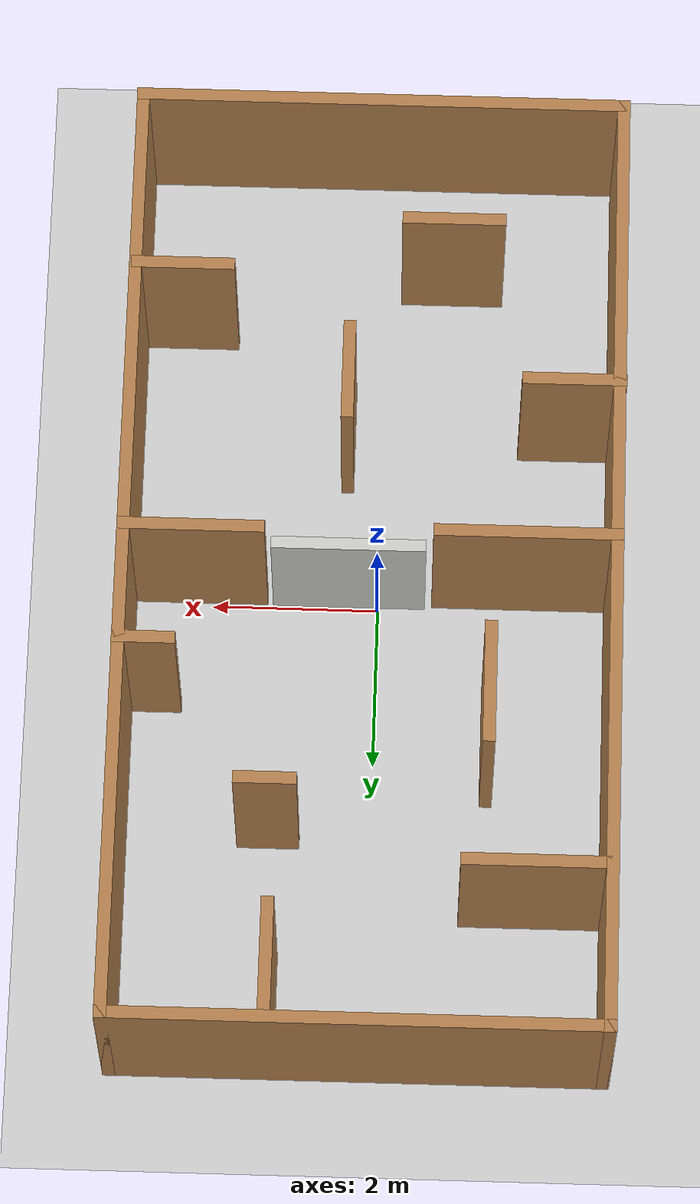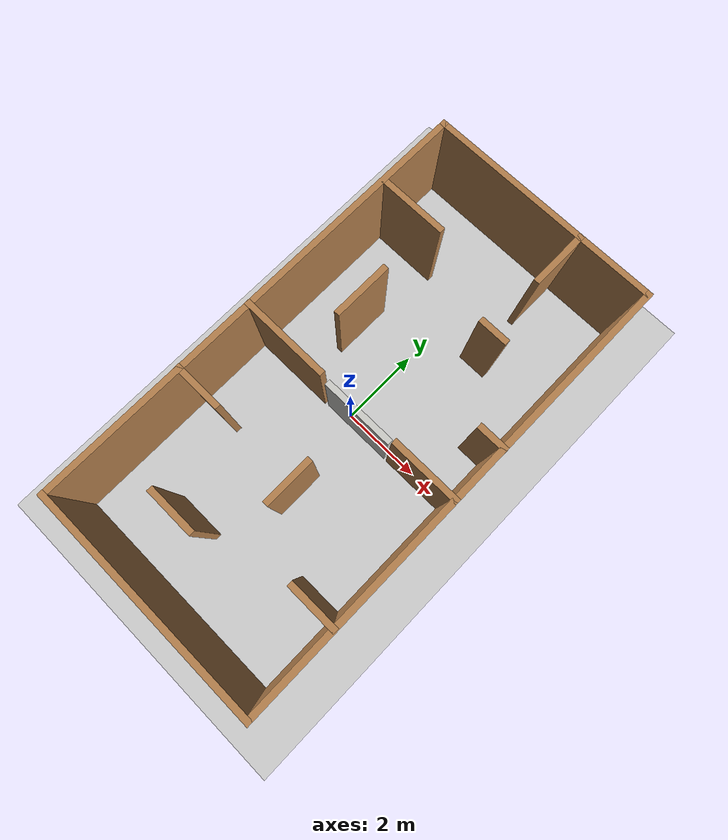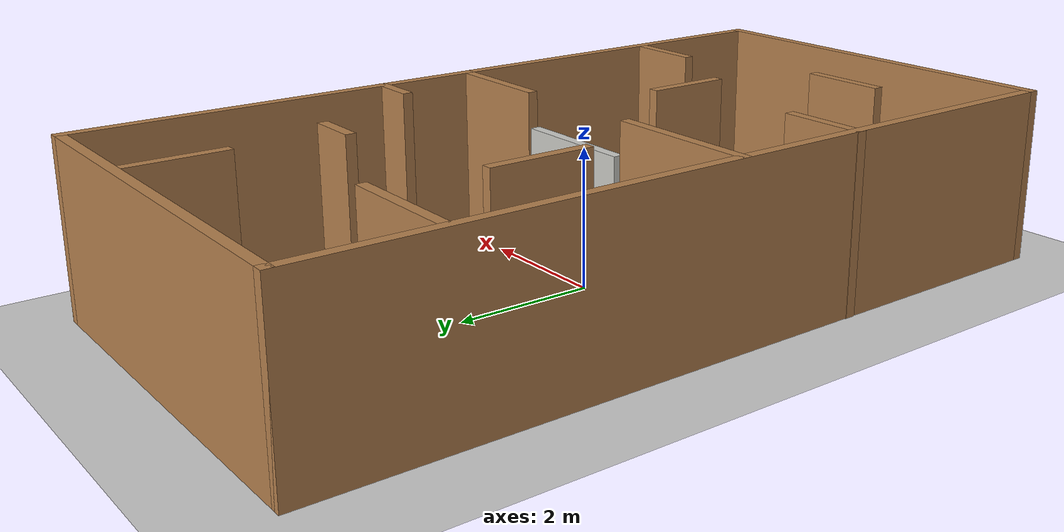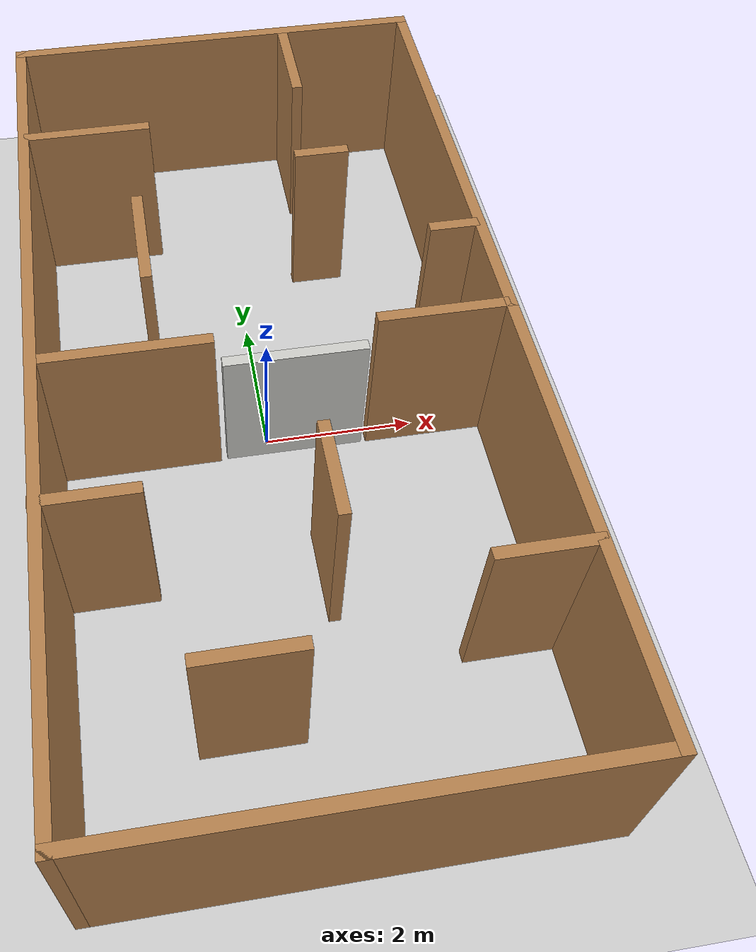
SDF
<sdf version="1.6">
 <world name="default">
  <light name="sun" type="directional">
   <pose>0 0 10 0 -0 0</pose>
   <diffuse>0.8 0.8 0.8 1</diffuse>
   <specular>0.2 0.2 0.2 1</specular>
   <attenuation>
    <range>1000</range>
    <constant>0.9</constant>
    <linear>0.01</linear>
    <quadratic>0.001</quadratic>
   </attenuation>
   <direction>-0.5 0.1 -0.9</direction>
  </light>
  <model name="ground_plane">
   <static>1</static>
   <link name="link">
    <collision name="collision">
     <geometry><plane><normal>0 0 1</normal><size>100 100</size></plane></geometry>
     <surface>
      <contact><collide_bitmask>65535</collide_bitmask></contact>
      <friction><ode><mu>100</mu><mu2>50</mu2></ode></friction>
     </surface>
    </collision>
    <visual name="visual">
     <cast_shadows>0</cast_shadows>
     <geometry><plane><normal>0 0 1</normal><size>100 100</size></plane></geometry>
     <material>
      <script><uri>file://media/materials/scripts/gazebo.material</uri><name>Gazebo/Grey</name></script>
     </material>
    </visual>
   </link>
  </model>
  <gravity>0 0 -9.8</gravity>
  <magnetic_field>6e-06 2.3e-05 -4.2e-05</magnetic_field>
  <atmosphere type="adiabatic"/>
  <physics name="default_physics" default="0" type="ode">
   <max_step_size>0.001</max_step_size>
   <real_time_factor>1</real_time_factor>
   <real_time_update_rate>1000</real_time_update_rate>
  </physics>
  <scene><ambient>0.4 0.4 0.4 1</ambient><background>0.7 0.7 0.7 1</background><shadows>1</shadows></scene>
  <audio><device>default</device></audio>
  <spherical_coordinates>
   <surface_model>EARTH_WGS84</surface_model>
   <latitude_deg>0</latitude_deg>
   <longitude_deg>0</longitude_deg>
   <elevation>0</elevation>
   <heading_deg>0</heading_deg>
  </spherical_coordinates>
  <model name="2rooms_small">
   <pose>0.084632 0.073261 0 0 -0 0</pose>
   <link name="Wall_11">
    <collision name="Wall_11_Collision">
     <geometry><box><size>6 0.15 2.5</size></box></geometry>
     <pose>0 0 1.25 0 -0 0</pose>
    </collision>
    <visual name="Wall_11_Visual">
     <pose>0 0 1.25 0 -0 0</pose>
     <geometry><box><size>6 0.15 2.5</size></box></geometry>
     <material>
      <script><uri>file://media/materials/scripts/gazebo.material</uri><name>Gazebo/Wood</name></script>
      <ambient>1 1 1 1</ambient>
     </material>
     <meta><layer>0</layer></meta>
    </visual>
    <pose>0.00356 -5.8 0 0 -0 3.14159</pose>
   </link>
   <link name="Wall_12">
    <collision name="Wall_12_Collision">
     <geometry><box><size>11.75 0.15 2.5</size></box></geometry>
     <pose>0 0 1.25 0 -0 0</pose>
    </collision>
    <visual name="Wall_12_Visual">
     <pose>0 0 1.25 0 -0 0</pose>
     <geometry><box><size>11.75 0.15 2.5</size></box></geometry>
     <material>
      <script><uri>file://media/materials/scripts/gazebo.material</uri><name>Gazebo/Wood</name></script>
      <ambient>1 1 1 1</ambient>
     </material>
     <meta><layer>0</layer></meta>
    </visual>
    <pose>-2.92144 0 0 0 -0 1.5708</pose>
   </link>
   <link name="Wall_13">
    <collision name="Wall_13_Collision">
     <geometry><box><size>6 0.15 2.5</size></box></geometry>
     <pose>0 0 1.25 0 -0 0</pose>
    </collision>
    <visual name="Wall_13_Visual">
     <pose>0 0 1.25 0 -0 0</pose>
     <geometry><box><size>6 0.15 2.5</size></box></geometry>
     <material>
      <script><uri>file://media/materials/scripts/gazebo.material</uri><name>Gazebo/Wood</name></script>
      <ambient>1 1 1 1</ambient>
     </material>
     <meta><layer>0</layer></meta>
    </visual>
    <pose>0.00356 5.8 0 0 -0 0</pose>
   </link>
   <link name="Wall_14">
    <collision name="Wall_14_Collision">
     <geometry><box><size>6.15 0.15 2.5</size></box></geometry>
     <pose>0 0 1.25 0 -0 0</pose>
    </collision>
    <visual name="Wall_14_Visual">
     <pose>0 0 1.25 0 -0 0</pose>
     <geometry><box><size>6.15 0.15 2.5</size></box></geometry>
     <material>
      <script><uri>file://media/materials/scripts/gazebo.material</uri><name>Gazebo/Wood</name></script>
      <ambient>1 1 1 1</ambient>
     </material>
     <meta><layer>0</layer></meta>
    </visual>
    <pose>2.92856 2.8 0 0 -0 -1.5708</pose>
   </link>
   <link name="Wall_16">
    <collision name="Wall_16_Collision">
     <geometry><box><size>2.25 0.15 2.5</size></box></geometry>
     <pose>0 0 1.25 0 -0 0</pose>
    </collision>
    <visual name="Wall_16_Visual">
     <pose>0 0 1.25 0 -0 0</pose>
     <geometry><box><size>2.25 0.15 2.5</size></box></geometry>
     <material>
      <script><uri>file://media/materials/scripts/gazebo.material</uri><name>Gazebo/Wood</name></script>
      <ambient>1 1 1 1</ambient>
     </material>
     <meta><layer>0</layer></meta>
    </visual>
    <pose>-1.86953 -0.219011 0 0 -0 0</pose>
   </link>
   <link name="Wall_18">
    <collision name="Wall_18_Collision">
     <geometry><box><size>1.75 0.15 2.5</size></box></geometry>
     <pose>0 0 1.25 0 -0 0</pose>
    </collision>
    <visual name="Wall_18_Visual">
     <pose>0 0 1.25 0 -0 0</pose>
     <geometry><box><size>1.75 0.15 2.5</size></box></geometry>
     <material>
      <script><uri>file://media/materials/scripts/gazebo.material</uri><name>Gazebo/Wood</name></script>
      <ambient>1 1 1 1</ambient>
     </material>
     <meta><layer>0</layer></meta>
    </visual>
    <pose>2.12856 -0.2 0 0 -0 3.14159</pose>
   </link>
   <link name="Wall_20">
    <collision name="Wall_20_Collision">
     <geometry><box><size>1.5 0.15 2.5</size></box></geometry>
     <pose>0 0 1.25 0 -0 0</pose>
    </collision>
    <visual name="Wall_20_Visual">
     <pose>0 0 1.25 0 -0 0</pose>
     <geometry><box><size>1.5 0.15 2.5</size></box></geometry>
     <material>
      <script><uri>file://media/materials/scripts/gazebo.material</uri><name>Gazebo/Wood</name></script>
      <ambient>1 1 1 1</ambient>
     </material>
     <meta><layer>0</layer></meta>
    </visual>
    <pose>1.05604 5.11453 0 0 -0 -1.5708</pose>
   </link>
   <link name="Wall_22">
    <collision name="Wall_22_Collision">
     <geometry><box><size>1.75 0.15 2.5</size></box></geometry>
     <pose>0 0 1.25 0 -0 0</pose>
    </collision>
    <visual name="Wall_22_Visual">
     <pose>0 0 1.25 0 -0 0</pose>
     <geometry><box><size>1.75 0.15 2.5</size></box></geometry>
     <material>
      <script><uri>file://media/materials/scripts/gazebo.material</uri><name>Gazebo/Wood</name></script>
      <ambient>1 1 1 1</ambient>
     </material>
     <meta><layer>0</layer></meta>
    </visual>
    <pose>-2.0356 3.84371 0 0 -0 0</pose>
   </link>
   <link name="Wall_25">
    <collision name="Wall_25_Collision">
     <geometry><box><size>1.5 0.15 2.5</size></box></geometry>
     <pose>0 0 1.25 0 -0 0</pose>
    </collision>
    <visual name="Wall_25_Visual">
     <pose>0 0 1.25 0 -0 0</pose>
     <geometry><box><size>1.5 0.15 2.5</size></box></geometry>
     <material>
      <script><uri>file://media/materials/scripts/gazebo.material</uri><name>Gazebo/Wood</name></script>
      <ambient>1 1 1 1</ambient>
     </material>
     <meta><layer>0</layer></meta>
    </visual>
    <pose>-1.45584 1.65305 0 0 -0 1.5708</pose>
   </link>
   <link name="Wall_32">
    <collision name="Wall_32_Collision">
     <geometry><box><size>0.75 0.15 2.5</size></box></geometry>
     <pose>0 0 1.25 0 -0 0</pose>
    </collision>
    <visual name="Wall_32_Visual">
     <pose>0 0 1.25 0 -0 0</pose>
     <geometry><box><size>0.75 0.15 2.5</size></box></geometry>
     <material>
      <script><uri>file://media/materials/scripts/gazebo.material</uri><name>Gazebo/Wood</name></script>
      <ambient>1 1 1 1</ambient>
     </material>
     <meta><layer>0</layer></meta>
    </visual>
    <pose>1.14377 2.92387 0 0 -0 0</pose>
   </link>
   <link name="Wall_34">
    <collision name="Wall_34_Collision">
     <geometry><box><size>0.75 0.15 2.5</size></box></geometry>
     <pose>0 0 1.25 0 -0 0</pose>
    </collision>
    <visual name="Wall_34_Visual">
     <pose>0 0 1.25 0 -0 0</pose>
     <geometry><box><size>0.75 0.15 2.5</size></box></geometry>
     <material>
      <script><uri>file://media/materials/scripts/gazebo.material</uri><name>Gazebo/Wood</name></script>
      <ambient>1 1 1 1</ambient>
     </material>
     <meta><layer>0</layer></meta>
    </visual>
    <pose>2.6311 1.2257 0 0 -0 3.14159</pose>
   </link>
   <link name="Wall_42">
    <collision name="Wall_42_Collision">
     <geometry><box><size>1.25 0.15 2.5</size></box></geometry>
     <pose>0 0 1.25 0 -0 0</pose>
    </collision>
    <visual name="Wall_42_Visual">
     <pose>0 0 1.25 0 -0 0</pose>
     <geometry><box><size>1.25 0.15 2.5</size></box></geometry>
     <material>
      <script><uri>file://media/materials/scripts/gazebo.material</uri><name>Gazebo/Wood</name></script>
      <ambient>1 1 1 1</ambient>
     </material>
     <meta><layer>0</layer></meta>
    </visual>
    <pose>0.323723 -2.24531 0 0 -0 -1.5708</pose>
   </link>
   <link name="Wall_44">
    <collision name="Wall_44_Collision">
     <geometry><box><size>1.25 0.15 2.5</size></box></geometry>
     <pose>0 0 1.25 0 -0 0</pose>
    </collision>
    <visual name="Wall_44_Visual">
     <pose>0 0 1.25 0 -0 0</pose>
     <geometry><box><size>1.25 0.15 2.5</size></box></geometry>
     <material>
      <script><uri>file://media/materials/scripts/gazebo.material</uri><name>Gazebo/Wood</name></script>
      <ambient>1 1 1 1</ambient>
     </material>
     <meta><layer>0</layer></meta>
    </visual>
    <pose>-2.3811 -2.1906 0 0 -0 0</pose>
   </link>
   <link name="Wall_48">
    <collision name="Wall_48_Collision">
     <geometry><box><size>1.25 0.15 2.5</size></box></geometry>
     <pose>0 0 1.25 0 -0 0</pose>
    </collision>
    <visual name="Wall_48_Visual">
     <pose>0 0 1.25 0 -0 0</pose>
     <geometry><box><size>1.25 0.15 2.5</size></box></geometry>
     <material>
      <script><uri>file://media/materials/scripts/gazebo.material</uri><name>Gazebo/Wood</name></script>
      <ambient>1 1 1 1</ambient>
     </material>
     <meta><layer>0</layer></meta>
    </visual>
    <pose>-0.895203 -4.24256 0 0 -0 0</pose>
   </link>
   <link name="Wall_50">
    <collision name="Wall_50_Collision">
     <geometry><box><size>1.25 0.15 2.5</size></box></geometry>
     <pose>0 0 1.25 0 -0 0</pose>
    </collision>
    <visual name="Wall_50_Visual">
     <pose>0 0 1.25 0 -0 0</pose>
     <geometry><box><size>1.25 0.15 2.5</size></box></geometry>
     <material>
      <script><uri>file://media/materials/scripts/gazebo.material</uri><name>Gazebo/Wood</name></script>
      <ambient>1 1 1 1</ambient>
     </material>
     <meta><layer>0</layer></meta>
    </visual>
    <pose>2.35636 -3.57037 0 0 -0 3.14159</pose>
   </link>
   <link name="Wall_9">
    <collision name="Wall_9_Collision">
     <geometry><box><size>5.75 0.15 2.5</size></box></geometry>
     <pose>0 0 1.25 0 -0 0</pose>
    </collision>
    <visual name="Wall_9_Visual">
     <pose>0 0 1.25 0 -0 0</pose>
     <geometry><box><size>5.75 0.15 2.5</size></box></geometry>
     <material>
      <script><uri>file://media/materials/scripts/gazebo.material</uri><name>Gazebo/Wood</name></script>
      <ambient>1 1 1 1</ambient>
     </material>
     <meta><layer>0</layer></meta>
    </visual>
    <pose>2.92856 -3 0 0 -0 -1.5708</pose>
   </link>
   <static>1</static>
  </model>
  <model name="with_door">
   <pose>0.348 -0.122 0 0 -0 0</pose>
   <link name="Wall_56">
    <collision name="Wall_56_Collision">
     <geometry><box><size>1.85 0.15 2</size></box></geometry>
     <pose>0 0 1 0 -0 0</pose>
    </collision>
    <visual name="Wall_56_Visual">
     <pose>0 0 1 0 -0 0</pose>
     <geometry><box><size>1.85 0.15 2</size></box></geometry>
     <material>
      <script><uri>file://media/materials/scripts/gazebo.material</uri><name>Gazebo/CeilingTiled</name></script>
      <ambient>1 0.764706 0.305882 1</ambient>
     </material>
     <meta><layer>0</layer></meta>
    </visual>
   </link>
   <static>1</static>
  </model>
 </world>
</sdf>
